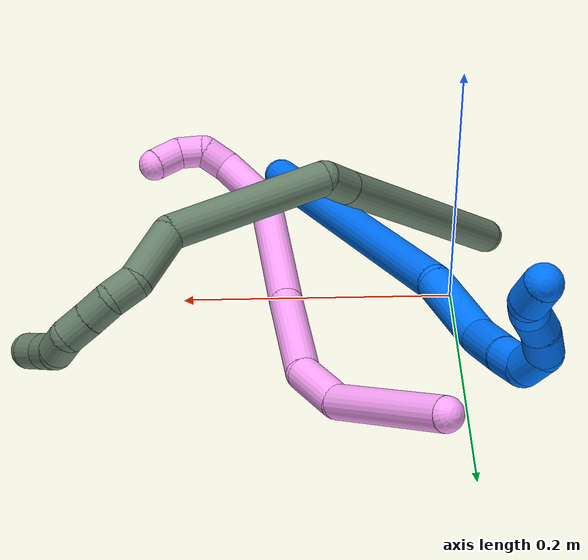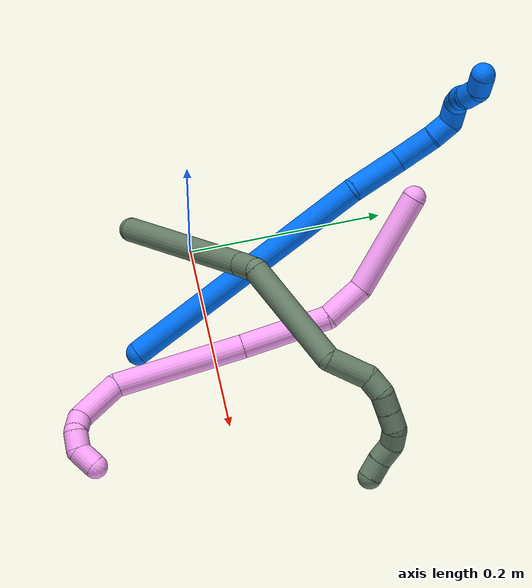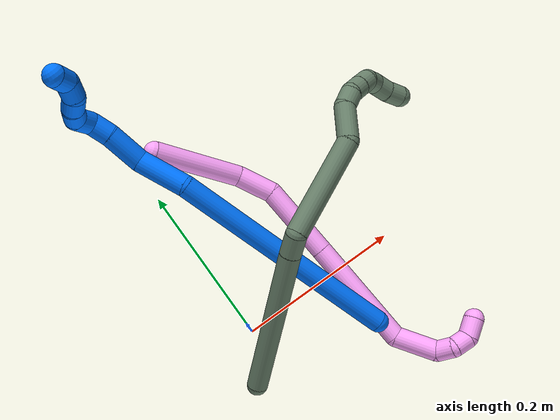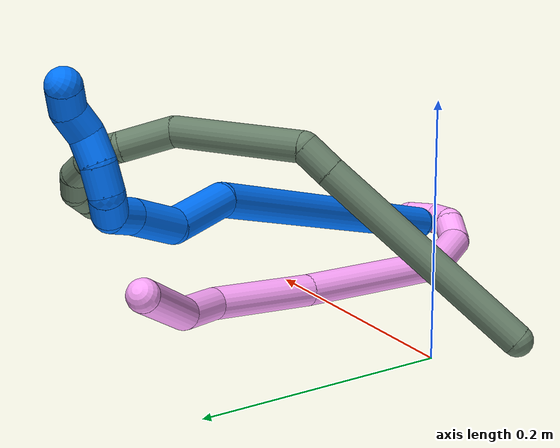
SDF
<sdf version="1.7">
 <world name="default">
  <model name="photoneo_s_sensor">
   <static>1</static>
   <pose>0 0 2 1.57079 1.57079 3.14159</pose>
   <link name="link">
    <inertial><mass>0.1</mass></inertial>
    <sensor name="sensor" type="depth">
     <update_rate>30</update_rate>
     <camera>
      <horizontal_fov>1.22</horizontal_fov>
      <image><width>1920</width><height>1200</height><format>B8G8R8</format></image>
      <clip><near>0.1</near><far>4</far></clip>
      <depth_camera><output>points</output></depth_camera>
     </camera>
     <plugin name="camera_plugin" filename="libgazebo_ros_depth_camera.so">
      <baseline>0.2</baseline>
      <alwaysOn>1</alwaysOn>
      <updateRate>0.0</updateRate>
      <cameraName>camera_ir</cameraName>
      <imageTopicName>/camera/color/image_raw</imageTopicName>
      <cameraInfoTopicName>/camera/color/camera_info</cameraInfoTopicName>
      <depthImageTopicName>/camera/depth/image_raw</depthImageTopicName>
      <depthImageCameraInfoTopicName>/camera/depth/camera_info</depthImageCameraInfoTopicName>
      <pointCloudTopicName>/camera/depth/points</pointCloudTopicName>
      <frameName>fr_optical</frameName>
      <pointCloudCutoff>0.1</pointCloudCutoff>
      <pointCloudCutoffMax>2.0</pointCloudCutoffMax>
      <distortionK1>0</distortionK1>
      <distortionK2>0</distortionK2>
      <distortionK3>0</distortionK3>
      <distortionT1>0</distortionT1>
      <distortionT2>0</distortionT2>
      <CxPrime>0</CxPrime>
      <Cx>0</Cx>
      <Cy>0</Cy>
      <focalLength>0</focalLength>
      <hackBaseline>0</hackBaseline>
     </plugin>
    </sensor>
   </link>
  </model>
  <model name="bin">
   <static>1</static>
   <link name="bottom">
    <collision name="collision-bottom">
     <pose>0 0 -0.01 0 -0 0</pose>
     <geometry><box><size>0.8 0.6 0.02</size></box></geometry>
     <surface>
      <friction><ode><mu>100</mu><mu2>100</mu2></ode></friction>
      <contact><collide_bitmask>65535</collide_bitmask></contact>
     </surface>
    </collision>
   </link>
   <link name="west_wall">
    <collision name="collision-west_wall">
     <pose>-0.41 0 0.1 0 -0 0</pose>
     <geometry><box><size>0.02 0.6 0.2</size></box></geometry>
     <surface>
      <friction><ode><mu>100</mu><mu2>100</mu2></ode></friction>
      <contact><collide_bitmask>65535</collide_bitmask></contact>
     </surface>
    </collision>
   </link>
   <link name="east_wall">
    <collision name="collision-east_wall">
     <pose>0.41 0 0.1 0 -0 0</pose>
     <geometry><box><size>0.02 0.6 0.2</size></box></geometry>
     <surface>
      <friction><ode><mu>100</mu><mu2>100</mu2></ode></friction>
      <contact><collide_bitmask>65535</collide_bitmask></contact>
     </surface>
    </collision>
   </link>
   <link name="south_wall">
    <collision name="collision-south_wall">
     <pose>0 -0.31 0.1 0 -0 0</pose>
     <geometry><box><size>0.8 0.02 0.2</size></box></geometry>
     <surface>
      <friction><ode><mu>100</mu><mu2>100</mu2></ode></friction>
      <contact><collide_bitmask>65535</collide_bitmask></contact>
     </surface>
    </collision>
   </link>
   <link name="north_wall">
    <collision name="collision-north_wall">
     <pose>0 0.31 0.1 0 -0 0</pose>
     <geometry><box><size>0.8 0.02 0.2</size></box></geometry>
     <surface>
      <friction><ode><mu>100</mu><mu2>100</mu2></ode></friction>
      <contact><collide_bitmask>65535</collide_bitmask></contact>
     </surface>
    </collision>
   </link>
  </model>
  <model name="4">
   <static>0</static>
   <link name="4">
    <collision name="collision-cylinder-e_1_1_4">
     <pose>0.010834 -0.008746 -0.052383 2.97616 0.201234 1.76652</pose>
     <geometry><cylinder><radius>0.0125</radius><length>0.108403</length></cylinder></geometry>
     <surface>
      <friction><ode><mu>1.16</mu><mu2>1.16</mu2><slip1>0</slip1><slip2>0</slip2></ode></friction>
      <contact><ode><kp>1e+06</kp><kd>1</kd><max_vel>0</max_vel><min_depth>0.001</min_depth></ode></contact>
     </surface>
    </collision>
    <visual name="visual-cylinder-e_1_1_4">
     <pose>0.010834 -0.008746 -0.052383 2.97616 0.201234 1.76652</pose>
     <geometry><cylinder><radius>0.0125</radius><length>0.108403</length></cylinder></geometry>
     <material><ambient>1 0.65098 0.996078 1</ambient></material>
    </visual>
    <collision name="collision-cylinder-e_2_4_5">
     <pose>0.023775 -0.029211 -0.123772 2.58907 0.094121 0.32922</pose>
     <geometry><cylinder><radius>0.0125</radius><length>0.044858</length></cylinder></geometry>
     <surface>
      <friction><ode><mu>1.16</mu><mu2>1.16</mu2><slip1>0</slip1><slip2>0</slip2></ode></friction>
      <contact><ode><kp>1e+06</kp><kd>1</kd><max_vel>0</max_vel><min_depth>0.001</min_depth></ode></contact>
     </surface>
    </collision>
    <visual name="visual-cylinder-e_2_4_5">
     <pose>0.023775 -0.029211 -0.123772 2.58907 0.094121 0.32922</pose>
     <geometry><cylinder><radius>0.0125</radius><length>0.044858</length></cylinder></geometry>
     <material><ambient>1 0.65098 0.996078 1</ambient></material>
    </visual>
    <collision name="collision-cylinder-e_3_5_6">
     <pose>0.012707 -0.069647 -0.176252 2.43254 -0.290318 -0.752239</pose>
     <geometry><cylinder><radius>0.0125</radius><length>0.092058</length></cylinder></geometry>
     <surface>
      <friction><ode><mu>1.16</mu><mu2>1.16</mu2><slip1>0</slip1><slip2>0</slip2></ode></friction>
      <contact><ode><kp>1e+06</kp><kd>1</kd><max_vel>0</max_vel><min_depth>0.001</min_depth></ode></contact>
     </surface>
    </collision>
    <visual name="visual-cylinder-e_3_5_6">
     <pose>0.012707 -0.069647 -0.176252 2.43254 -0.290318 -0.752239</pose>
     <geometry><cylinder><radius>0.0125</radius><length>0.092058</length></cylinder></geometry>
     <material><ambient>1 0.65098 0.996078 1</ambient></material>
    </visual>
    <collision name="collision-cylinder-e_4_6_7">
     <pose>-0.019767 -0.143367 -0.257032 2.38113 -0.287383 -0.694669</pose>
     <geometry><cylinder><radius>0.0125</radius><length>0.136173</length></cylinder></geometry>
     <surface>
      <friction><ode><mu>1.16</mu><mu2>1.16</mu2><slip1>0</slip1><slip2>0</slip2></ode></friction>
      <contact><ode><kp>1e+06</kp><kd>1</kd><max_vel>0</max_vel><min_depth>0.001</min_depth></ode></contact>
     </surface>
    </collision>
    <visual name="visual-cylinder-e_4_6_7">
     <pose>-0.019767 -0.143367 -0.257032 2.38113 -0.287383 -0.694669</pose>
     <geometry><cylinder><radius>0.0125</radius><length>0.136173</length></cylinder></geometry>
     <material><ambient>1 0.65098 0.996078 1</ambient></material>
    </visual>
    <collision name="collision-cylinder-e_5_7_8">
     <pose>-0.03257 -0.205696 -0.322899 2.39063 0.250479 0.618297</pose>
     <geometry><cylinder><radius>0.0125</radius><length>0.052416</length></cylinder></geometry>
     <surface>
      <friction><ode><mu>1.16</mu><mu2>1.16</mu2><slip1>0</slip1><slip2>0</slip2></ode></friction>
      <contact><ode><kp>1e+06</kp><kd>1</kd><max_vel>0</max_vel><min_depth>0.001</min_depth></ode></contact>
     </surface>
    </collision>
    <visual name="visual-cylinder-e_5_7_8">
     <pose>-0.03257 -0.205696 -0.322899 2.39063 0.250479 0.618297</pose>
     <geometry><cylinder><radius>0.0125</radius><length>0.052416</length></cylinder></geometry>
     <material><ambient>1 0.65098 0.996078 1</ambient></material>
    </visual>
    <collision name="collision-cylinder-e_6_8_9">
     <pose>-0.017645 -0.229779 -0.344209 1.95704 0.857352 1.19329</pose>
     <geometry><cylinder><radius>0.0125</radius><length>0.022294</length></cylinder></geometry>
     <surface>
      <friction><ode><mu>1.16</mu><mu2>1.16</mu2><slip1>0</slip1><slip2>0</slip2></ode></friction>
      <contact><ode><kp>1e+06</kp><kd>1</kd><max_vel>0</max_vel><min_depth>0.001</min_depth></ode></contact>
     </surface>
    </collision>
    <visual name="visual-cylinder-e_6_8_9">
     <pose>-0.017645 -0.229779 -0.344209 1.95704 0.857352 1.19329</pose>
     <geometry><cylinder><radius>0.0125</radius><length>0.022294</length></cylinder></geometry>
     <material><ambient>1 0.65098 0.996078 1</ambient></material>
    </visual>
    <collision name="collision-cylinder-e_7_9_10">
     <pose>-0.000737 -0.236586 -0.3523 3.13251 1.00845 3.12513</pose>
     <geometry><cylinder><radius>0.0125</radius><length>0.020045</length></cylinder></geometry>
     <surface>
      <friction><ode><mu>1.16</mu><mu2>1.16</mu2><slip1>0</slip1><slip2>0</slip2></ode></friction>
      <contact><ode><kp>1e+06</kp><kd>1</kd><max_vel>0</max_vel><min_depth>0.001</min_depth></ode></contact>
     </surface>
    </collision>
    <visual name="visual-cylinder-e_7_9_10">
     <pose>-0.000737 -0.236586 -0.3523 3.13251 1.00845 3.12513</pose>
     <geometry><cylinder><radius>0.0125</radius><length>0.020045</length></cylinder></geometry>
     <material><ambient>1 0.65098 0.996078 1</ambient></material>
    </visual>
    <collision name="collision-cylinder-e_8_10_2">
     <pose>0.018613 -0.231874 -0.358098 -1.66588 1.15637 -1.24511</pose>
     <geometry><cylinder><radius>0.0125</radius><length>0.023753</length></cylinder></geometry>
     <surface>
      <friction><ode><mu>1.16</mu><mu2>1.16</mu2><slip1>0</slip1><slip2>0</slip2></ode></friction>
      <contact><ode><kp>1e+06</kp><kd>1</kd><max_vel>0</max_vel><min_depth>0.001</min_depth></ode></contact>
     </surface>
    </collision>
    <visual name="visual-cylinder-e_8_10_2">
     <pose>0.018613 -0.231874 -0.358098 -1.66588 1.15637 -1.24511</pose>
     <geometry><cylinder><radius>0.0125</radius><length>0.023753</length></cylinder></geometry>
     <material><ambient>1 0.65098 0.996078 1</ambient></material>
    </visual>
    <collision name="collision-sphere-2">
     <pose>0.029484 -0.227113 -0.358552 0 -0 0</pose>
     <geometry><sphere><radius>0.0125</radius></sphere></geometry>
     <surface>
      <friction><ode><mu>1.16</mu><mu2>1.16</mu2><slip1>0</slip1><slip2>0</slip2></ode></friction>
      <contact><ode><kp>1e+06</kp><kd>1</kd><max_vel>0</max_vel><min_depth>0.001</min_depth></ode></contact>
     </surface>
    </collision>
    <visual name="visual-sphere-2">
     <pose>0.029484 -0.227113 -0.358552 0 -0 0</pose>
     <geometry><sphere><radius>0.0125</radius></sphere></geometry>
     <material><ambient>1 0.65098 0.996078 1</ambient></material>
    </visual>
    <collision name="collision-sphere-10">
     <pose>0.007742 -0.236634 -0.357644 0 -0 0</pose>
     <geometry><sphere><radius>0.0125</radius></sphere></geometry>
     <surface>
      <friction><ode><mu>1.16</mu><mu2>1.16</mu2><slip1>0</slip1><slip2>0</slip2></ode></friction>
      <contact><ode><kp>1e+06</kp><kd>1</kd><max_vel>0</max_vel><min_depth>0.001</min_depth></ode></contact>
     </surface>
    </collision>
    <visual name="visual-sphere-10">
     <pose>0.007742 -0.236634 -0.357644 0 -0 0</pose>
     <geometry><sphere><radius>0.0125</radius></sphere></geometry>
     <material><ambient>1 0.65098 0.996078 1</ambient></material>
    </visual>
    <collision name="collision-sphere-9">
     <pose>-0.009217 -0.236537 -0.346957 0 -0 0</pose>
     <geometry><sphere><radius>0.0125</radius></sphere></geometry>
     <surface>
      <friction><ode><mu>1.16</mu><mu2>1.16</mu2><slip1>0</slip1><slip2>0</slip2></ode></friction>
      <contact><ode><kp>1e+06</kp><kd>1</kd><max_vel>0</max_vel><min_depth>0.001</min_depth></ode></contact>
     </surface>
    </collision>
    <visual name="visual-sphere-9">
     <pose>-0.009217 -0.236537 -0.346957 0 -0 0</pose>
     <geometry><sphere><radius>0.0125</radius></sphere></geometry>
     <material><ambient>1 0.65098 0.996078 1</ambient></material>
    </visual>
    <collision name="collision-sphere-4">
     <pose>0.021667 -0.017492 -0.104765 0 -0 0</pose>
     <geometry><sphere><radius>0.0125</radius></sphere></geometry>
     <surface>
      <friction><ode><mu>1.16</mu><mu2>1.16</mu2><slip1>0</slip1><slip2>0</slip2></ode></friction>
      <contact><ode><kp>1e+06</kp><kd>1</kd><max_vel>0</max_vel><min_depth>0.001</min_depth></ode></contact>
     </surface>
    </collision>
    <visual name="visual-sphere-4">
     <pose>0.021667 -0.017492 -0.104765 0 -0 0</pose>
     <geometry><sphere><radius>0.0125</radius></sphere></geometry>
     <material><ambient>1 0.65098 0.996078 1</ambient></material>
    </visual>
    <collision name="collision-sphere-1">
     <geometry><sphere><radius>0.0125</radius></sphere></geometry>
     <surface>
      <friction><ode><mu>1.16</mu><mu2>1.16</mu2><slip1>0</slip1><slip2>0</slip2></ode></friction>
      <contact><ode><kp>1e+06</kp><kd>1</kd><max_vel>0</max_vel><min_depth>0.001</min_depth></ode></contact>
     </surface>
    </collision>
    <visual name="visual-sphere-1">
     <geometry><sphere><radius>0.0125</radius></sphere></geometry>
     <material><ambient>1 0.65098 0.996078 1</ambient></material>
    </visual>
    <collision name="collision-sphere-8">
     <pose>-0.026074 -0.223021 -0.34146 0 -0 0</pose>
     <geometry><sphere><radius>0.0125</radius></sphere></geometry>
     <surface>
      <friction><ode><mu>1.16</mu><mu2>1.16</mu2><slip1>0</slip1><slip2>0</slip2></ode></friction>
      <contact><ode><kp>1e+06</kp><kd>1</kd><max_vel>0</max_vel><min_depth>0.001</min_depth></ode></contact>
     </surface>
    </collision>
    <visual name="visual-sphere-8">
     <pose>-0.026074 -0.223021 -0.34146 0 -0 0</pose>
     <geometry><sphere><radius>0.0125</radius></sphere></geometry>
     <material><ambient>1 0.65098 0.996078 1</ambient></material>
    </visual>
    <collision name="collision-sphere-5">
     <pose>0.025883 -0.040931 -0.142779 0 -0 0</pose>
     <geometry><sphere><radius>0.0125</radius></sphere></geometry>
     <surface>
      <friction><ode><mu>1.16</mu><mu2>1.16</mu2><slip1>0</slip1><slip2>0</slip2></ode></friction>
      <contact><ode><kp>1e+06</kp><kd>1</kd><max_vel>0</max_vel><min_depth>0.001</min_depth></ode></contact>
     </surface>
    </collision>
    <visual name="visual-sphere-5">
     <pose>0.025883 -0.040931 -0.142779 0 -0 0</pose>
     <geometry><sphere><radius>0.0125</radius></sphere></geometry>
     <material><ambient>1 0.65098 0.996078 1</ambient></material>
    </visual>
    <collision name="collision-sphere-6">
     <pose>-0.000469 -0.098363 -0.209725 0 -0 0</pose>
     <geometry><sphere><radius>0.0125</radius></sphere></geometry>
     <surface>
      <friction><ode><mu>1.16</mu><mu2>1.16</mu2><slip1>0</slip1><slip2>0</slip2></ode></friction>
      <contact><ode><kp>1e+06</kp><kd>1</kd><max_vel>0</max_vel><min_depth>0.001</min_depth></ode></contact>
     </surface>
    </collision>
    <visual name="visual-sphere-6">
     <pose>-0.000469 -0.098363 -0.209725 0 -0 0</pose>
     <geometry><sphere><radius>0.0125</radius></sphere></geometry>
     <material><ambient>1 0.65098 0.996078 1</ambient></material>
    </visual>
    <collision name="collision-sphere-7">
     <pose>-0.039066 -0.188371 -0.304338 0 -0 0</pose>
     <geometry><sphere><radius>0.0125</radius></sphere></geometry>
     <surface>
      <friction><ode><mu>1.16</mu><mu2>1.16</mu2><slip1>0</slip1><slip2>0</slip2></ode></friction>
      <contact><ode><kp>1e+06</kp><kd>1</kd><max_vel>0</max_vel><min_depth>0.001</min_depth></ode></contact>
     </surface>
    </collision>
    <visual name="visual-sphere-7">
     <pose>-0.039066 -0.188371 -0.304338 0 -0 0</pose>
     <geometry><sphere><radius>0.0125</radius></sphere></geometry>
     <material><ambient>1 0.65098 0.996078 1</ambient></material>
    </visual>
    <inertial>
     <pose>-0.001909 -0.108695 -0.205247 0 -0 0</pose>
     <mass>0.5</mass>
     <inertia>
      <ixx>0.000148</ixx>
      <ixy>0</ixy>
      <ixz>0</ixz>
      <iyy>-0.000186</iyy>
      <iyz>0</iyz>
      <izz>0.00024</izz>
     </inertia>
    </inertial>
   </link>
   <pose>0.028402 0.228746 0.089511 -0.819723 -0.281044 0.361703</pose>
  </model>
  <model name="14">
   <static>0</static>
   <link name="14">
    <collision name="collision-cylinder-e_1_1_4">
     <pose>-0.029514 0.044758 0.125554 -0.342438 -0.217906 0.037824</pose>
     <geometry><cylinder><radius>0.0125</radius><length>0.273043</length></cylinder></geometry>
     <surface>
      <friction><ode><mu>1.16</mu><mu2>1.16</mu2><slip1>0</slip1><slip2>0</slip2></ode></friction>
      <contact><ode><kp>1e+06</kp><kd>1</kd><max_vel>0</max_vel><min_depth>0.001</min_depth></ode></contact>
     </surface>
    </collision>
    <visual name="visual-cylinder-e_1_1_4">
     <pose>-0.029514 0.044758 0.125554 -0.342438 -0.217906 0.037824</pose>
     <geometry><cylinder><radius>0.0125</radius><length>0.273043</length></cylinder></geometry>
     <material><ambient>0 0.462745 1 1</ambient></material>
    </visual>
    <collision name="collision-cylinder-e_2_4_5">
     <pose>-0.064004 0.108481 0.272308 -0.729823 -0.173181 0.0663</pose>
     <geometry><cylinder><radius>0.0125</radius><length>0.057754</length></cylinder></geometry>
     <surface>
      <friction><ode><mu>1.16</mu><mu2>1.16</mu2><slip1>0</slip1><slip2>0</slip2></ode></friction>
      <contact><ode><kp>1e+06</kp><kd>1</kd><max_vel>0</max_vel><min_depth>0.001</min_depth></ode></contact>
     </surface>
    </collision>
    <visual name="visual-cylinder-e_2_4_5">
     <pose>-0.064004 0.108481 0.272308 -0.729823 -0.173181 0.0663</pose>
     <geometry><cylinder><radius>0.0125</radius><length>0.057754</length></cylinder></geometry>
     <material><ambient>0 0.462745 1 1</ambient></material>
    </visual>
    <collision name="collision-cylinder-e_3_5_6">
     <pose>-0.072241 0.13249 0.314029 -0.240995 -0.15312 0.018576</pose>
     <geometry><cylinder><radius>0.0125</radius><length>0.042765</length></cylinder></geometry>
     <surface>
      <friction><ode><mu>1.16</mu><mu2>1.16</mu2><slip1>0</slip1><slip2>0</slip2></ode></friction>
      <contact><ode><kp>1e+06</kp><kd>1</kd><max_vel>0</max_vel><min_depth>0.001</min_depth></ode></contact>
     </surface>
    </collision>
    <visual name="visual-cylinder-e_3_5_6">
     <pose>-0.072241 0.13249 0.314029 -0.240995 -0.15312 0.018576</pose>
     <geometry><cylinder><radius>0.0125</radius><length>0.042765</length></cylinder></geometry>
     <material><ambient>0 0.462745 1 1</ambient></material>
    </visual>
    <collision name="collision-cylinder-e_4_6_7">
     <pose>-0.078517 0.141558 0.345108 -0.364251 -0.260716 0.04828</pose>
     <geometry><cylinder><radius>0.0125</radius><length>0.023387</length></cylinder></geometry>
     <surface>
      <friction><ode><mu>1.16</mu><mu2>1.16</mu2><slip1>0</slip1><slip2>0</slip2></ode></friction>
      <contact><ode><kp>1e+06</kp><kd>1</kd><max_vel>0</max_vel><min_depth>0.001</min_depth></ode></contact>
     </surface>
    </collision>
    <visual name="visual-cylinder-e_4_6_7">
     <pose>-0.078517 0.141558 0.345108 -0.364251 -0.260716 0.04828</pose>
     <geometry><cylinder><radius>0.0125</radius><length>0.023387</length></cylinder></geometry>
     <material><ambient>0 0.462745 1 1</ambient></material>
    </visual>
    <collision name="collision-cylinder-e_5_7_8">
     <pose>-0.088316 0.142494 0.363908 0.358608 -0.656603 -0.123322</pose>
     <geometry><cylinder><radius>0.0125</radius><length>0.022229</length></cylinder></geometry>
     <surface>
      <friction><ode><mu>1.16</mu><mu2>1.16</mu2><slip1>0</slip1><slip2>0</slip2></ode></friction>
      <contact><ode><kp>1e+06</kp><kd>1</kd><max_vel>0</max_vel><min_depth>0.001</min_depth></ode></contact>
     </surface>
    </collision>
    <visual name="visual-cylinder-e_5_7_8">
     <pose>-0.088316 0.142494 0.363908 0.358608 -0.656603 -0.123322</pose>
     <geometry><cylinder><radius>0.0125</radius><length>0.022229</length></cylinder></geometry>
     <material><ambient>0 0.462745 1 1</ambient></material>
    </visual>
    <collision name="collision-cylinder-e_6_8_9">
     <pose>-0.095937 0.13177 0.379006 0.839061 -0.081402 -0.036322</pose>
     <geometry><cylinder><radius>0.0125</radius><length>0.020587</length></cylinder></geometry>
     <surface>
      <friction><ode><mu>1.16</mu><mu2>1.16</mu2><slip1>0</slip1><slip2>0</slip2></ode></friction>
      <contact><ode><kp>1e+06</kp><kd>1</kd><max_vel>0</max_vel><min_depth>0.001</min_depth></ode></contact>
     </surface>
    </collision>
    <visual name="visual-cylinder-e_6_8_9">
     <pose>-0.095937 0.13177 0.379006 0.839061 -0.081402 -0.036322</pose>
     <geometry><cylinder><radius>0.0125</radius><length>0.020587</length></cylinder></geometry>
     <material><ambient>0 0.462745 1 1</ambient></material>
    </visual>
    <collision name="collision-cylinder-e_7_9_10">
     <pose>-0.095254 0.116468 0.392211 0.879276 0.151507 0.071366</pose>
     <geometry><cylinder><radius>0.0125</radius><length>0.020143</length></cylinder></geometry>
     <surface>
      <friction><ode><mu>1.16</mu><mu2>1.16</mu2><slip1>0</slip1><slip2>0</slip2></ode></friction>
      <contact><ode><kp>1e+06</kp><kd>1</kd><max_vel>0</max_vel><min_depth>0.001</min_depth></ode></contact>
     </surface>
    </collision>
    <visual name="visual-cylinder-e_7_9_10">
     <pose>-0.095254 0.116468 0.392211 0.879276 0.151507 0.071366</pose>
     <geometry><cylinder><radius>0.0125</radius><length>0.020143</length></cylinder></geometry>
     <material><ambient>0 0.462745 1 1</ambient></material>
    </visual>
    <collision name="collision-cylinder-e_8_10_11">
     <pose>-0.093626 0.104444 0.407607 0.448635 0.010719 0.002446</pose>
     <geometry><cylinder><radius>0.0125</radius><length>0.020083</length></cylinder></geometry>
     <surface>
      <friction><ode><mu>1.16</mu><mu2>1.16</mu2><slip1>0</slip1><slip2>0</slip2></ode></friction>
      <contact><ode><kp>1e+06</kp><kd>1</kd><max_vel>0</max_vel><min_depth>0.001</min_depth></ode></contact>
     </surface>
    </collision>
    <visual name="visual-cylinder-e_8_10_11">
     <pose>-0.093626 0.104444 0.407607 0.448635 0.010719 0.002446</pose>
     <geometry><cylinder><radius>0.0125</radius><length>0.020083</length></cylinder></geometry>
     <material><ambient>0 0.462745 1 1</ambient></material>
    </visual>
    <collision name="collision-cylinder-e_9_11_2">
     <pose>-0.098706 0.095817 0.424066 0.522874 -0.545144 -0.149304</pose>
     <geometry><cylinder><radius>0.0125</radius><length>0.020009</length></cylinder></geometry>
     <surface>
      <friction><ode><mu>1.16</mu><mu2>1.16</mu2><slip1>0</slip1><slip2>0</slip2></ode></friction>
      <contact><ode><kp>1e+06</kp><kd>1</kd><max_vel>0</max_vel><min_depth>0.001</min_depth></ode></contact>
     </surface>
    </collision>
    <visual name="visual-cylinder-e_9_11_2">
     <pose>-0.098706 0.095817 0.424066 0.522874 -0.545144 -0.149304</pose>
     <geometry><cylinder><radius>0.0125</radius><length>0.020009</length></cylinder></geometry>
     <material><ambient>0 0.462745 1 1</ambient></material>
    </visual>
    <collision name="collision-sphere-2">
     <pose>-0.103894 0.091545 0.431477 0 -0 0</pose>
     <geometry><sphere><radius>0.0125</radius></sphere></geometry>
     <surface>
      <friction><ode><mu>1.16</mu><mu2>1.16</mu2><slip1>0</slip1><slip2>0</slip2></ode></friction>
      <contact><ode><kp>1e+06</kp><kd>1</kd><max_vel>0</max_vel><min_depth>0.001</min_depth></ode></contact>
     </surface>
    </collision>
    <visual name="visual-sphere-2">
     <pose>-0.103894 0.091545 0.431477 0 -0 0</pose>
     <geometry><sphere><radius>0.0125</radius></sphere></geometry>
     <material><ambient>0 0.462745 1 1</ambient></material>
    </visual>
    <collision name="collision-sphere-11">
     <pose>-0.093519 0.100089 0.416655 0 -0 0</pose>
     <geometry><sphere><radius>0.0125</radius></sphere></geometry>
     <surface>
      <friction><ode><mu>1.16</mu><mu2>1.16</mu2><slip1>0</slip1><slip2>0</slip2></ode></friction>
      <contact><ode><kp>1e+06</kp><kd>1</kd><max_vel>0</max_vel><min_depth>0.001</min_depth></ode></contact>
     </surface>
    </collision>
    <visual name="visual-sphere-11">
     <pose>-0.093519 0.100089 0.416655 0 -0 0</pose>
     <geometry><sphere><radius>0.0125</radius></sphere></geometry>
     <material><ambient>0 0.462745 1 1</ambient></material>
    </visual>
    <collision name="collision-sphere-10">
     <pose>-0.093734 0.108799 0.39856 0 -0 0</pose>
     <geometry><sphere><radius>0.0125</radius></sphere></geometry>
     <surface>
      <friction><ode><mu>1.16</mu><mu2>1.16</mu2><slip1>0</slip1><slip2>0</slip2></ode></friction>
      <contact><ode><kp>1e+06</kp><kd>1</kd><max_vel>0</max_vel><min_depth>0.001</min_depth></ode></contact>
     </surface>
    </collision>
    <visual name="visual-sphere-10">
     <pose>-0.093734 0.108799 0.39856 0 -0 0</pose>
     <geometry><sphere><radius>0.0125</radius></sphere></geometry>
     <material><ambient>0 0.462745 1 1</ambient></material>
    </visual>
    <collision name="collision-sphere-9">
     <pose>-0.096774 0.124137 0.385862 0 -0 0</pose>
     <geometry><sphere><radius>0.0125</radius></sphere></geometry>
     <surface>
      <friction><ode><mu>1.16</mu><mu2>1.16</mu2><slip1>0</slip1><slip2>0</slip2></ode></friction>
      <contact><ode><kp>1e+06</kp><kd>1</kd><max_vel>0</max_vel><min_depth>0.001</min_depth></ode></contact>
     </surface>
    </collision>
    <visual name="visual-sphere-9">
     <pose>-0.096774 0.124137 0.385862 0 -0 0</pose>
     <geometry><sphere><radius>0.0125</radius></sphere></geometry>
     <material><ambient>0 0.462745 1 1</ambient></material>
    </visual>
    <collision name="collision-sphere-4">
     <pose>-0.059028 0.089515 0.251108 0 -0 0</pose>
     <geometry><sphere><radius>0.0125</radius></sphere></geometry>
     <surface>
      <friction><ode><mu>1.16</mu><mu2>1.16</mu2><slip1>0</slip1><slip2>0</slip2></ode></friction>
      <contact><ode><kp>1e+06</kp><kd>1</kd><max_vel>0</max_vel><min_depth>0.001</min_depth></ode></contact>
     </surface>
    </collision>
    <visual name="visual-sphere-4">
     <pose>-0.059028 0.089515 0.251108 0 -0 0</pose>
     <geometry><sphere><radius>0.0125</radius></sphere></geometry>
     <material><ambient>0 0.462745 1 1</ambient></material>
    </visual>
    <collision name="collision-sphere-1">
     <geometry><sphere><radius>0.0125</radius></sphere></geometry>
     <surface>
      <friction><ode><mu>1.16</mu><mu2>1.16</mu2><slip1>0</slip1><slip2>0</slip2></ode></friction>
      <contact><ode><kp>1e+06</kp><kd>1</kd><max_vel>0</max_vel><min_depth>0.001</min_depth></ode></contact>
     </surface>
    </collision>
    <visual name="visual-sphere-1">
     <geometry><sphere><radius>0.0125</radius></sphere></geometry>
     <material><ambient>0 0.462745 1 1</ambient></material>
    </visual>
    <collision name="collision-sphere-8">
     <pose>-0.0951 0.139404 0.372151 0 -0 0</pose>
     <geometry><sphere><radius>0.0125</radius></sphere></geometry>
     <surface>
      <friction><ode><mu>1.16</mu><mu2>1.16</mu2><slip1>0</slip1><slip2>0</slip2></ode></friction>
      <contact><ode><kp>1e+06</kp><kd>1</kd><max_vel>0</max_vel><min_depth>0.001</min_depth></ode></contact>
     </surface>
    </collision>
    <visual name="visual-sphere-8">
     <pose>-0.0951 0.139404 0.372151 0 -0 0</pose>
     <geometry><sphere><radius>0.0125</radius></sphere></geometry>
     <material><ambient>0 0.462745 1 1</ambient></material>
    </visual>
    <collision name="collision-sphere-5">
     <pose>-0.06898 0.127446 0.293507 0 -0 0</pose>
     <geometry><sphere><radius>0.0125</radius></sphere></geometry>
     <surface>
      <friction><ode><mu>1.16</mu><mu2>1.16</mu2><slip1>0</slip1><slip2>0</slip2></ode></friction>
      <contact><ode><kp>1e+06</kp><kd>1</kd><max_vel>0</max_vel><min_depth>0.001</min_depth></ode></contact>
     </surface>
    </collision>
    <visual name="visual-sphere-5">
     <pose>-0.06898 0.127446 0.293507 0 -0 0</pose>
     <geometry><sphere><radius>0.0125</radius></sphere></geometry>
     <material><ambient>0 0.462745 1 1</ambient></material>
    </visual>
    <collision name="collision-sphere-6">
     <pose>-0.075503 0.137533 0.334551 0 -0 0</pose>
     <geometry><sphere><radius>0.0125</radius></sphere></geometry>
     <surface>
      <friction><ode><mu>1.16</mu><mu2>1.16</mu2><slip1>0</slip1><slip2>0</slip2></ode></friction>
      <contact><ode><kp>1e+06</kp><kd>1</kd><max_vel>0</max_vel><min_depth>0.001</min_depth></ode></contact>
     </surface>
    </collision>
    <visual name="visual-sphere-6">
     <pose>-0.075503 0.137533 0.334551 0 -0 0</pose>
     <geometry><sphere><radius>0.0125</radius></sphere></geometry>
     <material><ambient>0 0.462745 1 1</ambient></material>
    </visual>
    <collision name="collision-sphere-7">
     <pose>-0.081531 0.145583 0.355665 0 -0 0</pose>
     <geometry><sphere><radius>0.0125</radius></sphere></geometry>
     <surface>
      <friction><ode><mu>1.16</mu><mu2>1.16</mu2><slip1>0</slip1><slip2>0</slip2></ode></friction>
      <contact><ode><kp>1e+06</kp><kd>1</kd><max_vel>0</max_vel><min_depth>0.001</min_depth></ode></contact>
     </surface>
    </collision>
    <visual name="visual-sphere-7">
     <pose>-0.081531 0.145583 0.355665 0 -0 0</pose>
     <geometry><sphere><radius>0.0125</radius></sphere></geometry>
     <material><ambient>0 0.462745 1 1</ambient></material>
    </visual>
    <inertial>
     <pose>-0.052786 0.079407 0.223945 0 -0 0</pose>
     <mass>0.5</mass>
     <inertia>
      <ixx>0.001757</ixx>
      <ixy>0</ixy>
      <ixz>0</ixz>
      <iyy>0.001713</iyy>
      <iyz>0</iyz>
      <izz>-0.000161</izz>
     </inertia>
    </inertial>
   </link>
   <pose>0.12449 -0.078672 0.056955 -0.94591 0.312541 0.234369</pose>
  </model>
  <model name="17">
   <static>0</static>
   <link name="17">
    <collision name="collision-cylinder-e_1_1_4">
     <pose>0.019697 0.021484 0.089668 -0.235167 0.210459 -0.024952</pose>
     <geometry><cylinder><radius>0.0125</radius><length>0.188572</length></cylinder></geometry>
     <surface>
      <friction><ode><mu>1.16</mu><mu2>1.16</mu2><slip1>0</slip1><slip2>0</slip2></ode></friction>
      <contact><ode><kp>1e+06</kp><kd>1</kd><max_vel>0</max_vel><min_depth>0.001</min_depth></ode></contact>
     </surface>
    </collision>
    <visual name="visual-cylinder-e_1_1_4">
     <pose>0.019697 0.021484 0.089668 -0.235167 0.210459 -0.024952</pose>
     <geometry><cylinder><radius>0.0125</radius><length>0.188572</length></cylinder></geometry>
     <material><ambient>0.415686 0.509804 0.423529 1</ambient></material>
    </visual>
    <collision name="collision-cylinder-e_2_4_5">
     <pose>0.042428 0.045482 0.192293 -0.191589 0.225887 -0.021797</pose>
     <geometry><cylinder><radius>0.0125</radius><length>0.027087</length></cylinder></geometry>
     <surface>
      <friction><ode><mu>1.16</mu><mu2>1.16</mu2><slip1>0</slip1><slip2>0</slip2></ode></friction>
      <contact><ode><kp>1e+06</kp><kd>1</kd><max_vel>0</max_vel><min_depth>0.001</min_depth></ode></contact>
     </surface>
    </collision>
    <visual name="visual-cylinder-e_2_4_5">
     <pose>0.042428 0.045482 0.192293 -0.191589 0.225887 -0.021797</pose>
     <geometry><cylinder><radius>0.0125</radius><length>0.027087</length></cylinder></geometry>
     <material><ambient>0.415686 0.509804 0.423529 1</ambient></material>
    </visual>
    <collision name="collision-cylinder-e_3_5_6">
     <pose>0.092146 0.068912 0.235284 -0.608323 0.905915 -0.303212</pose>
     <geometry><cylinder><radius>0.0125</radius><length>0.118641</length></cylinder></geometry>
     <surface>
      <friction><ode><mu>1.16</mu><mu2>1.16</mu2><slip1>0</slip1><slip2>0</slip2></ode></friction>
      <contact><ode><kp>1e+06</kp><kd>1</kd><max_vel>0</max_vel><min_depth>0.001</min_depth></ode></contact>
     </surface>
    </collision>
    <visual name="visual-cylinder-e_3_5_6">
     <pose>0.092146 0.068912 0.235284 -0.608323 0.905915 -0.303212</pose>
     <geometry><cylinder><radius>0.0125</radius><length>0.118641</length></cylinder></geometry>
     <material><ambient>0.415686 0.509804 0.423529 1</ambient></material>
    </visual>
    <collision name="collision-cylinder-e_4_6_7">
     <pose>0.150388 0.108056 0.270862 -1.27552 0.545239 -0.408595</pose>
     <geometry><cylinder><radius>0.0125</radius><length>0.044569</length></cylinder></geometry>
     <surface>
      <friction><ode><mu>1.16</mu><mu2>1.16</mu2><slip1>0</slip1><slip2>0</slip2></ode></friction>
      <contact><ode><kp>1e+06</kp><kd>1</kd><max_vel>0</max_vel><min_depth>0.001</min_depth></ode></contact>
     </surface>
    </collision>
    <visual name="visual-cylinder-e_4_6_7">
     <pose>0.150388 0.108056 0.270862 -1.27552 0.545239 -0.408595</pose>
     <geometry><cylinder><radius>0.0125</radius><length>0.044569</length></cylinder></geometry>
     <material><ambient>0.415686 0.509804 0.423529 1</ambient></material>
    </visual>
    <collision name="collision-cylinder-e_5_7_8">
     <pose>0.17064 0.131422 0.278875 -1.12288 0.990587 -0.655058</pose>
     <geometry><cylinder><radius>0.0125</radius><length>0.020793</length></cylinder></geometry>
     <surface>
      <friction><ode><mu>1.16</mu><mu2>1.16</mu2><slip1>0</slip1><slip2>0</slip2></ode></friction>
      <contact><ode><kp>1e+06</kp><kd>1</kd><max_vel>0</max_vel><min_depth>0.001</min_depth></ode></contact>
     </surface>
    </collision>
    <visual name="visual-cylinder-e_5_7_8">
     <pose>0.17064 0.131422 0.278875 -1.12288 0.990587 -0.655058</pose>
     <geometry><cylinder><radius>0.0125</radius><length>0.020793</length></cylinder></geometry>
     <material><ambient>0.415686 0.509804 0.423529 1</ambient></material>
    </visual>
    <collision name="collision-cylinder-e_6_8_9">
     <pose>0.188729 0.139688 0.27988 -2.00822 1.21847 -1.66289</pose>
     <geometry><cylinder><radius>0.0125</radius><length>0.020017</length></cylinder></geometry>
     <surface>
      <friction><ode><mu>1.16</mu><mu2>1.16</mu2><slip1>0</slip1><slip2>0</slip2></ode></friction>
      <contact><ode><kp>1e+06</kp><kd>1</kd><max_vel>0</max_vel><min_depth>0.001</min_depth></ode></contact>
     </surface>
    </collision>
    <visual name="visual-cylinder-e_6_8_9">
     <pose>0.188729 0.139688 0.27988 -2.00822 1.21847 -1.66289</pose>
     <geometry><cylinder><radius>0.0125</radius><length>0.020017</length></cylinder></geometry>
     <material><ambient>0.415686 0.509804 0.423529 1</ambient></material>
    </visual>
    <collision name="collision-cylinder-e_7_9_10">
     <pose>0.207641 0.145735 0.277136 -1.98452 1.24769 -1.66783</pose>
     <geometry><cylinder><radius>0.0125</radius><length>0.020076</length></cylinder></geometry>
     <surface>
      <friction><ode><mu>1.16</mu><mu2>1.16</mu2><slip1>0</slip1><slip2>0</slip2></ode></friction>
      <contact><ode><kp>1e+06</kp><kd>1</kd><max_vel>0</max_vel><min_depth>0.001</min_depth></ode></contact>
     </surface>
    </collision>
    <visual name="visual-cylinder-e_7_9_10">
     <pose>0.207641 0.145735 0.277136 -1.98452 1.24769 -1.66783</pose>
     <geometry><cylinder><radius>0.0125</radius><length>0.020076</length></cylinder></geometry>
     <material><ambient>0.415686 0.509804 0.423529 1</ambient></material>
    </visual>
    <collision name="collision-cylinder-e_8_10_11">
     <pose>0.225262 0.148721 0.26998 -3.13007 0.943363 -3.11899</pose>
     <geometry><cylinder><radius>0.0125</radius><length>0.020016</length></cylinder></geometry>
     <surface>
      <friction><ode><mu>1.16</mu><mu2>1.16</mu2><slip1>0</slip1><slip2>0</slip2></ode></friction>
      <contact><ode><kp>1e+06</kp><kd>1</kd><max_vel>0</max_vel><min_depth>0.001</min_depth></ode></contact>
     </surface>
    </collision>
    <visual name="visual-cylinder-e_8_10_11">
     <pose>0.225262 0.148721 0.26998 -3.13007 0.943363 -3.11899</pose>
     <geometry><cylinder><radius>0.0125</radius><length>0.020016</length></cylinder></geometry>
     <material><ambient>0.415686 0.509804 0.423529 1</ambient></material>
    </visual>
    <collision name="collision-cylinder-e_9_11_12">
     <pose>0.240502 0.143543 0.259281 2.31431 0.786256 1.51399</pose>
     <geometry><cylinder><radius>0.0125</radius><length>0.020173</length></cylinder></geometry>
     <surface>
      <friction><ode><mu>1.16</mu><mu2>1.16</mu2><slip1>0</slip1><slip2>0</slip2></ode></friction>
      <contact><ode><kp>1e+06</kp><kd>1</kd><max_vel>0</max_vel><min_depth>0.001</min_depth></ode></contact>
     </surface>
    </collision>
    <visual name="visual-cylinder-e_9_11_12">
     <pose>0.240502 0.143543 0.259281 2.31431 0.786256 1.51399</pose>
     <geometry><cylinder><radius>0.0125</radius><length>0.020173</length></cylinder></geometry>
     <material><ambient>0.415686 0.509804 0.423529 1</ambient></material>
    </visual>
    <collision name="collision-cylinder-e_10_12_2">
     <pose>0.255722 0.133454 0.251025 2.18722 0.937235 1.54966</pose>
     <geometry><cylinder><radius>0.0125</radius><length>0.020056</length></cylinder></geometry>
     <surface>
      <friction><ode><mu>1.16</mu><mu2>1.16</mu2><slip1>0</slip1><slip2>0</slip2></ode></friction>
      <contact><ode><kp>1e+06</kp><kd>1</kd><max_vel>0</max_vel><min_depth>0.001</min_depth></ode></contact>
     </surface>
    </collision>
    <visual name="visual-cylinder-e_10_12_2">
     <pose>0.255722 0.133454 0.251025 2.18722 0.937235 1.54966</pose>
     <geometry><cylinder><radius>0.0125</radius><length>0.020056</length></cylinder></geometry>
     <material><ambient>0.415686 0.509804 0.423529 1</ambient></material>
    </visual>
    <collision name="collision-sphere-2">
     <pose>0.263804 0.12861 0.247593 0 -0 0</pose>
     <geometry><sphere><radius>0.0125</radius></sphere></geometry>
     <surface>
      <friction><ode><mu>1.16</mu><mu2>1.16</mu2><slip1>0</slip1><slip2>0</slip2></ode></friction>
      <contact><ode><kp>1e+06</kp><kd>1</kd><max_vel>0</max_vel><min_depth>0.001</min_depth></ode></contact>
     </surface>
    </collision>
    <visual name="visual-sphere-2">
     <pose>0.263804 0.12861 0.247593 0 -0 0</pose>
     <geometry><sphere><radius>0.0125</radius></sphere></geometry>
     <material><ambient>0.415686 0.509804 0.423529 1</ambient></material>
    </visual>
    <collision name="collision-sphere-12">
     <pose>0.24764 0.138298 0.254458 0 -0 0</pose>
     <geometry><sphere><radius>0.0125</radius></sphere></geometry>
     <surface>
      <friction><ode><mu>1.16</mu><mu2>1.16</mu2><slip1>0</slip1><slip2>0</slip2></ode></friction>
      <contact><ode><kp>1e+06</kp><kd>1</kd><max_vel>0</max_vel><min_depth>0.001</min_depth></ode></contact>
     </surface>
    </collision>
    <visual name="visual-sphere-12">
     <pose>0.24764 0.138298 0.254458 0 -0 0</pose>
     <geometry><sphere><radius>0.0125</radius></sphere></geometry>
     <material><ambient>0.415686 0.509804 0.423529 1</ambient></material>
    </visual>
    <collision name="collision-sphere-11">
     <pose>0.233364 0.148789 0.264104 0 -0 0</pose>
     <geometry><sphere><radius>0.0125</radius></sphere></geometry>
     <surface>
      <friction><ode><mu>1.16</mu><mu2>1.16</mu2><slip1>0</slip1><slip2>0</slip2></ode></friction>
      <contact><ode><kp>1e+06</kp><kd>1</kd><max_vel>0</max_vel><min_depth>0.001</min_depth></ode></contact>
     </surface>
    </collision>
    <visual name="visual-sphere-11">
     <pose>0.233364 0.148789 0.264104 0 -0 0</pose>
     <geometry><sphere><radius>0.0125</radius></sphere></geometry>
     <material><ambient>0.415686 0.509804 0.423529 1</ambient></material>
    </visual>
    <collision name="collision-sphere-10">
     <pose>0.21716 0.148653 0.275855 0 -0 0</pose>
     <geometry><sphere><radius>0.0125</radius></sphere></geometry>
     <surface>
      <friction><ode><mu>1.16</mu><mu2>1.16</mu2><slip1>0</slip1><slip2>0</slip2></ode></friction>
      <contact><ode><kp>1e+06</kp><kd>1</kd><max_vel>0</max_vel><min_depth>0.001</min_depth></ode></contact>
     </surface>
    </collision>
    <visual name="visual-sphere-10">
     <pose>0.21716 0.148653 0.275855 0 -0 0</pose>
     <geometry><sphere><radius>0.0125</radius></sphere></geometry>
     <material><ambient>0.415686 0.509804 0.423529 1</ambient></material>
    </visual>
    <collision name="collision-sphere-9">
     <pose>0.198123 0.142816 0.278417 0 -0 0</pose>
     <geometry><sphere><radius>0.0125</radius></sphere></geometry>
     <surface>
      <friction><ode><mu>1.16</mu><mu2>1.16</mu2><slip1>0</slip1><slip2>0</slip2></ode></friction>
      <contact><ode><kp>1e+06</kp><kd>1</kd><max_vel>0</max_vel><min_depth>0.001</min_depth></ode></contact>
     </surface>
    </collision>
    <visual name="visual-sphere-9">
     <pose>0.198123 0.142816 0.278417 0 -0 0</pose>
     <geometry><sphere><radius>0.0125</radius></sphere></geometry>
     <material><ambient>0.415686 0.509804 0.423529 1</ambient></material>
    </visual>
    <collision name="collision-sphere-4">
     <pose>0.039394 0.042969 0.179335 0 -0 0</pose>
     <geometry><sphere><radius>0.0125</radius></sphere></geometry>
     <surface>
      <friction><ode><mu>1.16</mu><mu2>1.16</mu2><slip1>0</slip1><slip2>0</slip2></ode></friction>
      <contact><ode><kp>1e+06</kp><kd>1</kd><max_vel>0</max_vel><min_depth>0.001</min_depth></ode></contact>
     </surface>
    </collision>
    <visual name="visual-sphere-4">
     <pose>0.039394 0.042969 0.179335 0 -0 0</pose>
     <geometry><sphere><radius>0.0125</radius></sphere></geometry>
     <material><ambient>0.415686 0.509804 0.423529 1</ambient></material>
    </visual>
    <collision name="collision-sphere-1">
     <geometry><sphere><radius>0.0125</radius></sphere></geometry>
     <surface>
      <friction><ode><mu>1.16</mu><mu2>1.16</mu2><slip1>0</slip1><slip2>0</slip2></ode></friction>
      <contact><ode><kp>1e+06</kp><kd>1</kd><max_vel>0</max_vel><min_depth>0.001</min_depth></ode></contact>
     </surface>
    </collision>
    <visual name="visual-sphere-1">
     <geometry><sphere><radius>0.0125</radius></sphere></geometry>
     <material><ambient>0.415686 0.509804 0.423529 1</ambient></material>
    </visual>
    <collision name="collision-sphere-8">
     <pose>0.179335 0.136559 0.281343 0 -0 0</pose>
     <geometry><sphere><radius>0.0125</radius></sphere></geometry>
     <surface>
      <friction><ode><mu>1.16</mu><mu2>1.16</mu2><slip1>0</slip1><slip2>0</slip2></ode></friction>
      <contact><ode><kp>1e+06</kp><kd>1</kd><max_vel>0</max_vel><min_depth>0.001</min_depth></ode></contact>
     </surface>
    </collision>
    <visual name="visual-sphere-8">
     <pose>0.179335 0.136559 0.281343 0 -0 0</pose>
     <geometry><sphere><radius>0.0125</radius></sphere></geometry>
     <material><ambient>0.415686 0.509804 0.423529 1</ambient></material>
    </visual>
    <collision name="collision-sphere-5">
     <pose>0.045461 0.047996 0.205251 0 -0 0</pose>
     <geometry><sphere><radius>0.0125</radius></sphere></geometry>
     <surface>
      <friction><ode><mu>1.16</mu><mu2>1.16</mu2><slip1>0</slip1><slip2>0</slip2></ode></friction>
      <contact><ode><kp>1e+06</kp><kd>1</kd><max_vel>0</max_vel><min_depth>0.001</min_depth></ode></contact>
     </surface>
    </collision>
    <visual name="visual-sphere-5">
     <pose>0.045461 0.047996 0.205251 0 -0 0</pose>
     <geometry><sphere><radius>0.0125</radius></sphere></geometry>
     <material><ambient>0.415686 0.509804 0.423529 1</ambient></material>
    </visual>
    <collision name="collision-sphere-6">
     <pose>0.13883 0.089827 0.265317 0 -0 0</pose>
     <geometry><sphere><radius>0.0125</radius></sphere></geometry>
     <surface>
      <friction><ode><mu>1.16</mu><mu2>1.16</mu2><slip1>0</slip1><slip2>0</slip2></ode></friction>
      <contact><ode><kp>1e+06</kp><kd>1</kd><max_vel>0</max_vel><min_depth>0.001</min_depth></ode></contact>
     </surface>
    </collision>
    <visual name="visual-sphere-6">
     <pose>0.13883 0.089827 0.265317 0 -0 0</pose>
     <geometry><sphere><radius>0.0125</radius></sphere></geometry>
     <material><ambient>0.415686 0.509804 0.423529 1</ambient></material>
    </visual>
    <collision name="collision-sphere-7">
     <pose>0.161945 0.126285 0.276407 0 -0 0</pose>
     <geometry><sphere><radius>0.0125</radius></sphere></geometry>
     <surface>
      <friction><ode><mu>1.16</mu><mu2>1.16</mu2><slip1>0</slip1><slip2>0</slip2></ode></friction>
      <contact><ode><kp>1e+06</kp><kd>1</kd><max_vel>0</max_vel><min_depth>0.001</min_depth></ode></contact>
     </surface>
    </collision>
    <visual name="visual-sphere-7">
     <pose>0.161945 0.126285 0.276407 0 -0 0</pose>
     <geometry><sphere><radius>0.0125</radius></sphere></geometry>
     <material><ambient>0.415686 0.509804 0.423529 1</ambient></material>
    </visual>
    <inertial>
     <pose>0.096964 0.070557 0.189475 0 -0 0</pose>
     <mass>0.5</mass>
     <inertia>
      <ixx>0.000625</ixx>
      <ixy>0</ixy>
      <ixz>0</ixz>
      <iyy>0.000664</iyy>
      <iyz>0</iyz>
      <izz>-0.000413</izz>
     </inertia>
    </inertial>
   </link>
   <pose>-0.031935 -0.055727 0.013025 -0.351841 0.479753 -0.087797</pose>
  </model>
 </world>
</sdf>
